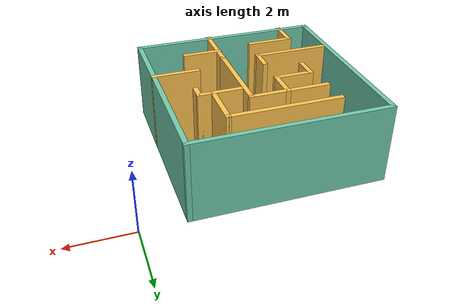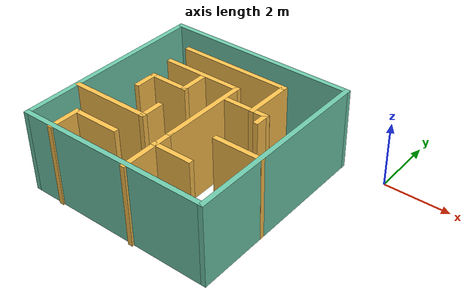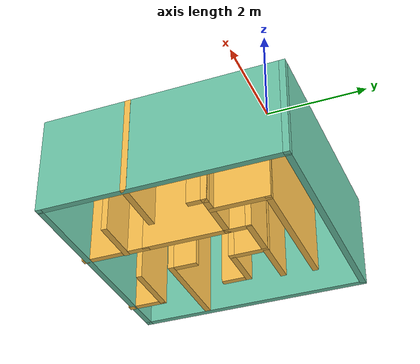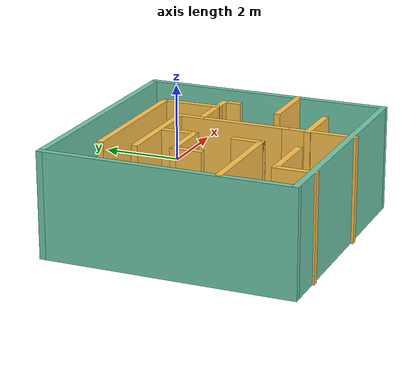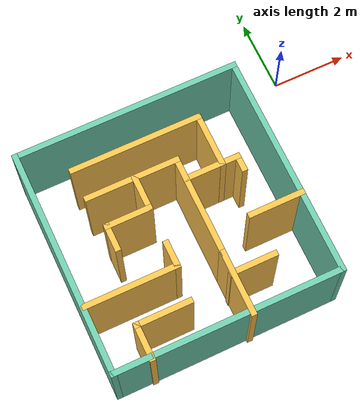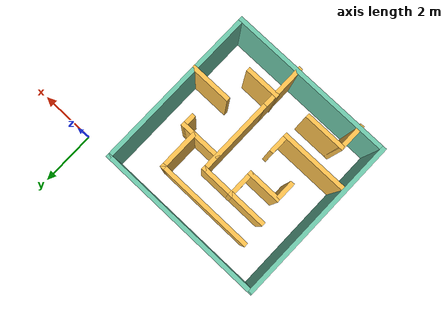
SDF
<?xml version='1.0'?>
<sdf version='1.7'>
  <model name='simple_maze'>
    <pose>-3.65816 -3.00864 0 0 -0 0</pose>
    <link name='Wall_1'>
      <collision name='Wall_1_Collision'>
        <geometry>
          <box>
            <size>6 0.15 2.5</size>
          </box>
        </geometry>
        <pose>0 0 1.25 0 -0 0</pose>
      </collision>
      <visual name='Wall_1_Visual'>
        <pose>0 0 1.25 0 -0 0</pose>
        <geometry>
          <box>
            <size>6 0.15 2.5</size>
          </box>
        </geometry>
        <material>
          <script>
            <uri>file://media/materials/scripts/gazebo.material</uri>
            <name>Gazebo/Grey</name>
          </script>
          <ambient>0.435294 0.796078 0.67451 1</ambient>
        </material>
        <meta>
          <layer>0</layer>
        </meta>
      </visual>
      <pose>-3.58316 0.031695 0 0 -0 -1.5708</pose>
    </link>
    <link name='Wall_11'>
      <collision name='Wall_11_Collision'>
        <geometry>
          <box>
            <size>2.75 0.15 2.5</size>
          </box>
        </geometry>
        <pose>0 0 1.25 0 -0 0</pose>
      </collision>
      <visual name='Wall_11_Visual'>
        <pose>0 0 1.25 0 -0 0</pose>
        <geometry>
          <box>
            <size>2.75 0.15 2.5</size>
          </box>
        </geometry>
        <material>
          <script>
            <uri>file://media/materials/scripts/gazebo.material</uri>
            <name>Gazebo/Grey</name>
          </script>
          <ambient>1 0.764706 0.305882 1</ambient>
        </material>
        <meta>
          <layer>0</layer>
        </meta>
      </visual>
      <pose>-0.083403 -0.056695 0 0 -0 1.5708</pose>
    </link>
    <link name='Wall_12'>
      <collision name='Wall_12_Collision'>
        <geometry>
          <box>
            <size>2.5 0.15 2.5</size>
          </box>
        </geometry>
        <pose>0 0 1.25 0 -0 0</pose>
      </collision>
      <visual name='Wall_12_Visual'>
        <pose>0 0 1.25 0 -0 0</pose>
        <geometry>
          <box>
            <size>2.5 0.15 2.5</size>
          </box>
        </geometry>
        <material>
          <script>
            <uri>file://media/materials/scripts/gazebo.material</uri>
            <name>Gazebo/Grey</name>
          </script>
          <ambient>1 0.764706 0.305882 1</ambient>
        </material>
        <meta>
          <layer>0</layer>
        </meta>
      </visual>
      <pose>-1.2584 1.24331 0 0 -0 3.14159</pose>
    </link>
    <link name='Wall_14'>
      <collision name='Wall_14_Collision'>
        <geometry>
          <box>
            <size>1 0.15 2.5</size>
          </box>
        </geometry>
        <pose>0 0 1.25 0 -0 0</pose>
      </collision>
      <visual name='Wall_14_Visual'>
        <pose>0 0 1.25 0 -0 0</pose>
        <geometry>
          <box>
            <size>1 0.15 2.5</size>
          </box>
        </geometry>
        <material>
          <script>
            <uri>file://media/materials/scripts/gazebo.material</uri>
            <name>Gazebo/Grey</name>
          </script>
          <ambient>1 0.764706 0.305882 1</ambient>
        </material>
        <meta>
          <layer>0</layer>
        </meta>
      </visual>
      <pose>-1.18965 0.822041 0 0 -0 -1.5708</pose>
    </link>
    <link name='Wall_16'>
      <collision name='Wall_16_Collision'>
        <geometry>
          <box>
            <size>0.75 0.15 2.5</size>
          </box>
        </geometry>
        <pose>0 0 1.25 0 -0 0</pose>
      </collision>
      <visual name='Wall_16_Visual'>
        <pose>0 0 1.25 0 -0 0</pose>
        <geometry>
          <box>
            <size>0.75 0.15 2.5</size>
          </box>
        </geometry>
        <material>
          <script>
            <uri>file://media/materials/scripts/gazebo.material</uri>
            <name>Gazebo/Grey</name>
          </script>
          <ambient>1 0.764706 0.305882 1</ambient>
        </material>
        <meta>
          <layer>0</layer>
        </meta>
      </visual>
      <pose>-1.18965 -0.883294 0 0 -0 -1.5708</pose>
    </link>
    <link name='Wall_19'>
      <collision name='Wall_19_Collision'>
        <geometry>
          <box>
            <size>2.5 0.15 2.5</size>
          </box>
        </geometry>
        <pose>0 0 1.25 0 -0 0</pose>
      </collision>
      <visual name='Wall_19_Visual'>
        <pose>0 0 1.25 0 -0 0</pose>
        <geometry>
          <box>
            <size>2.5 0.15 2.5</size>
          </box>
        </geometry>
        <material>
          <script>
            <uri>file://media/materials/scripts/gazebo.material</uri>
            <name>Gazebo/Grey</name>
          </script>
          <ambient>1 0.764706 0.305882 1</ambient>
        </material>
        <meta>
          <layer>0</layer>
        </meta>
      </visual>
      <pose>-2.36465 -1.18329 0 0 -0 3.14159</pose>
    </link>
    <link name='Wall_2'>
      <collision name='Wall_2_Collision'>
        <geometry>
          <box>
            <size>6 0.15 2.5</size>
          </box>
        </geometry>
        <pose>0 0 1.25 0 -0 0</pose>
      </collision>
      <visual name='Wall_2_Visual'>
        <pose>0 0 1.25 0 -0 0</pose>
        <geometry>
          <box>
            <size>6 0.15 2.5</size>
          </box>
        </geometry>
        <material>
          <script>
            <uri>file://media/materials/scripts/gazebo.material</uri>
            <name>Gazebo/Grey</name>
          </script>
          <ambient>0.435294 0.796078 0.67451 1</ambient>
        </material>
        <meta>
          <layer>0</layer>
        </meta>
      </visual>
      <pose>-0.658165 -2.8933 0 0 -0 0</pose>
    </link>
    <link name='Wall_21'>
      <collision name='Wall_21_Collision'>
        <geometry>
          <box>
            <size>1.25 0.15 2.5</size>
          </box>
        </geometry>
        <pose>0 0 1.25 0 -0 0</pose>
      </collision>
      <visual name='Wall_21_Visual'>
        <pose>0 0 1.25 0 -0 0</pose>
        <geometry>
          <box>
            <size>1.25 0.15 2.5</size>
          </box>
        </geometry>
        <material>
          <script>
            <uri>file://media/materials/scripts/gazebo.material</uri>
            <name>Gazebo/Grey</name>
          </script>
          <ambient>1 0.764706 0.305882 1</ambient>
        </material>
        <meta>
          <layer>0</layer>
        </meta>
      </visual>
      <pose>-1.73965 0.397041 0 0 -0 3.14159</pose>
    </link>
    <link name='Wall_22'>
      <collision name='Wall_22_Collision'>
        <geometry>
          <box>
            <size>0.75 0.15 2.5</size>
          </box>
        </geometry>
        <pose>0 0 1.25 0 -0 0</pose>
      </collision>
      <visual name='Wall_22_Visual'>
        <pose>0 0 1.25 0 -0 0</pose>
        <geometry>
          <box>
            <size>0.75 0.15 2.5</size>
          </box>
        </geometry>
        <material>
          <script>
            <uri>file://media/materials/scripts/gazebo.material</uri>
            <name>Gazebo/Grey</name>
          </script>
          <ambient>1 0.764706 0.305882 1</ambient>
        </material>
        <meta>
          <layer>0</layer>
        </meta>
      </visual>
      <pose>-2.28965 0.097041 0 0 -0 -1.5708</pose>
    </link>
    <link name='Wall_24'>
      <collision name='Wall_24_Collision'>
        <geometry>
          <box>
            <size>1.25 0.15 2.5</size>
          </box>
        </geometry>
        <pose>0 0 1.25 0 -0 0</pose>
      </collision>
      <visual name='Wall_24_Visual'>
        <pose>0 0 1.25 0 -0 0</pose>
        <geometry>
          <box>
            <size>1.25 0.15 2.5</size>
          </box>
        </geometry>
        <material>
          <script>
            <uri>file://media/materials/scripts/gazebo.material</uri>
            <name>Gazebo/Grey</name>
          </script>
          <ambient>1 0.764706 0.305882 1</ambient>
        </material>
        <meta>
          <layer>0</layer>
        </meta>
      </visual>
      <pose>0.446484 -1.89068 0 0 -0 0</pose>
    </link>
    <link name='Wall_26'>
      <collision name='Wall_26_Collision'>
        <geometry>
          <box>
            <size>1.5 0.15 2.5</size>
          </box>
        </geometry>
        <pose>0 0 1.25 0 -0 0</pose>
      </collision>
      <visual name='Wall_26_Visual'>
        <pose>0 0 1.25 0 -0 0</pose>
        <geometry>
          <box>
            <size>1.5 0.15 2.5</size>
          </box>
        </geometry>
        <material>
          <script>
            <uri>file://media/materials/scripts/gazebo.material</uri>
            <name>Gazebo/Grey</name>
          </script>
          <ambient>1 0.764706 0.305882 1</ambient>
        </material>
        <meta>
          <layer>0</layer>
        </meta>
      </visual>
      <pose>1.59489 -0.78443 0 0 -0 3.14159</pose>
    </link>
    <link name='Wall_28'>
      <collision name='Wall_28_Collision'>
        <geometry>
          <box>
            <size>1.5 0.15 2.5</size>
          </box>
        </geometry>
        <pose>0 0 1.25 0 -0 0</pose>
      </collision>
      <visual name='Wall_28_Visual'>
        <pose>0 0 1.25 0 -0 0</pose>
        <geometry>
          <box>
            <size>1.5 0.15 2.5</size>
          </box>
        </geometry>
        <material>
          <script>
            <uri>file://media/materials/scripts/gazebo.material</uri>
            <name>Gazebo/Grey</name>
          </script>
          <ambient>1 0.764706 0.305882 1</ambient>
        </material>
        <meta>
          <layer>0</layer>
        </meta>
      </visual>
      <pose>0.611711 0.703975 0 0 -0 0</pose>
    </link>
    <link name='Wall_3'>
      <collision name='Wall_3_Collision'>
        <geometry>
          <box>
            <size>6 0.15 2.5</size>
          </box>
        </geometry>
        <pose>0 0 1.25 0 -0 0</pose>
      </collision>
      <visual name='Wall_3_Visual'>
        <pose>0 0 1.25 0 -0 0</pose>
        <geometry>
          <box>
            <size>6 0.15 2.5</size>
          </box>
        </geometry>
        <material>
          <script>
            <uri>file://media/materials/scripts/gazebo.material</uri>
            <name>Gazebo/Grey</name>
          </script>
          <ambient>0.435294 0.796078 0.67451 1</ambient>
        </material>
        <meta>
          <layer>0</layer>
        </meta>
      </visual>
      <pose>2.26684 0.031695 0 0 -0 1.5708</pose>
    </link>
    <link name='Wall_32'>
      <collision name='Wall_32_Collision'>
        <geometry>
          <box>
            <size>3.5 0.15 2.5</size>
          </box>
        </geometry>
        <pose>0 0 1.25 0 -0 0</pose>
      </collision>
      <visual name='Wall_32_Visual'>
        <pose>0 0 1.25 0 -0 0</pose>
        <geometry>
          <box>
            <size>3.5 0.15 2.5</size>
          </box>
        </geometry>
        <material>
          <script>
            <uri>file://media/materials/scripts/gazebo.material</uri>
            <name>Gazebo/Grey</name>
          </script>
          <ambient>1 0.764706 0.305882 1</ambient>
        </material>
        <meta>
          <layer>0</layer>
        </meta>
      </visual>
      <pose>-0.801918 2.05158 0 0 -0 0</pose>
    </link>
    <link name='Wall_33'>
      <collision name='Wall_33_Collision'>
        <geometry>
          <box>
            <size>1.5 0.15 2.5</size>
          </box>
        </geometry>
        <pose>0 0 1.25 0 -0 0</pose>
      </collision>
      <visual name='Wall_33_Visual'>
        <pose>0 0 1.25 0 -0 0</pose>
        <geometry>
          <box>
            <size>1.5 0.15 2.5</size>
          </box>
        </geometry>
        <material>
          <script>
            <uri>file://media/materials/scripts/gazebo.material</uri>
            <name>Gazebo/Grey</name>
          </script>
          <ambient>1 0.764706 0.305882 1</ambient>
        </material>
        <meta>
          <layer>0</layer>
        </meta>
      </visual>
      <pose>0.873082 1.37658 0 0 -0 -1.5708</pose>
    </link>
    <link name='Wall_37'>
      <collision name='Wall_37_Collision'>
        <geometry>
          <box>
            <size>0.5 0.15 2.5</size>
          </box>
        </geometry>
        <pose>0 0 1.25 0 -0 0</pose>
      </collision>
      <visual name='Wall_37_Visual'>
        <pose>0 0 1.25 0 -0 0</pose>
        <geometry>
          <box>
            <size>0.5 0.15 2.5</size>
          </box>
        </geometry>
        <material>
          <script>
            <uri>file://media/materials/scripts/gazebo.material</uri>
            <name>Gazebo/Grey</name>
          </script>
          <ambient>1 0.764706 0.305882 1</ambient>
        </material>
        <meta>
          <layer>0</layer>
        </meta>
      </visual>
      <pose>1.28671 0.528975 0 0 -0 -1.5708</pose>
    </link>
    <link name='Wall_4'>
      <collision name='Wall_4_Collision'>
        <geometry>
          <box>
            <size>6 0.15 2.5</size>
          </box>
        </geometry>
        <pose>0 0 1.25 0 -0 0</pose>
      </collision>
      <visual name='Wall_4_Visual'>
        <pose>0 0 1.25 0 -0 0</pose>
        <geometry>
          <box>
            <size>6 0.15 2.5</size>
          </box>
        </geometry>
        <material>
          <script>
            <uri>file://media/materials/scripts/gazebo.material</uri>
            <name>Gazebo/Grey</name>
          </script>
          <ambient>0.435294 0.796078 0.67451 1</ambient>
        </material>
        <meta>
          <layer>0</layer>
        </meta>
      </visual>
      <pose>-0.658165 2.95669 0 0 -0 3.14159</pose>
    </link>
    <link name='Wall_6'>
      <collision name='Wall_6_Collision'>
        <geometry>
          <box>
            <size>1 0.15 2.5</size>
          </box>
        </geometry>
        <pose>0 0 1.25 0 -0 0</pose>
      </collision>
      <visual name='Wall_6_Visual'>
        <pose>0 0 1.25 0 -0 0</pose>
        <geometry>
          <box>
            <size>1 0.15 2.5</size>
          </box>
        </geometry>
        <material>
          <script>
            <uri>file://media/materials/scripts/gazebo.material</uri>
            <name>Gazebo/Grey</name>
          </script>
          <ambient>1 0.764706 0.305882 1</ambient>
        </material>
        <meta>
          <layer>0</layer>
        </meta>
      </visual>
      <pose>-2.63783 -2.51158 0 0 -0 1.5708</pose>
    </link>
    <link name='Wall_7'>
      <collision name='Wall_7_Collision'>
        <geometry>
          <box>
            <size>1.5 0.15 2.5</size>
          </box>
        </geometry>
        <pose>0 0 1.25 0 -0 0</pose>
      </collision>
      <visual name='Wall_7_Visual'>
        <pose>0 0 1.25 0 -0 0</pose>
        <geometry>
          <box>
            <size>1.5 0.15 2.5</size>
          </box>
        </geometry>
        <material>
          <script>
            <uri>file://media/materials/scripts/gazebo.material</uri>
            <name>Gazebo/Grey</name>
          </script>
          <ambient>1 0.764706 0.305882 1</ambient>
        </material>
        <meta>
          <layer>0</layer>
        </meta>
      </visual>
      <pose>-1.96283 -2.08658 0 0 -0 0</pose>
    </link>
    <link name='Wall_9'>
      <collision name='Wall_9_Collision'>
        <geometry>
          <box>
            <size>1.75 0.15 2.5</size>
          </box>
        </geometry>
        <pose>0 0 1.25 0 -0 0</pose>
      </collision>
      <visual name='Wall_9_Visual'>
        <pose>0 0 1.25 0 -0 0</pose>
        <geometry>
          <box>
            <size>1.75 0.15 2.5</size>
          </box>
        </geometry>
        <material>
          <script>
            <uri>file://media/materials/scripts/gazebo.material</uri>
            <name>Gazebo/Grey</name>
          </script>
          <ambient>1 0.764706 0.305882 1</ambient>
        </material>
        <meta>
          <layer>0</layer>
        </meta>
      </visual>
      <pose>-0.083403 -2.1567 0 0 -0 1.5708</pose>
    </link>
    <static>1</static>
  </model>
</sdf>
